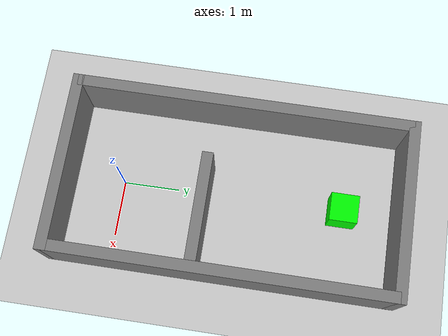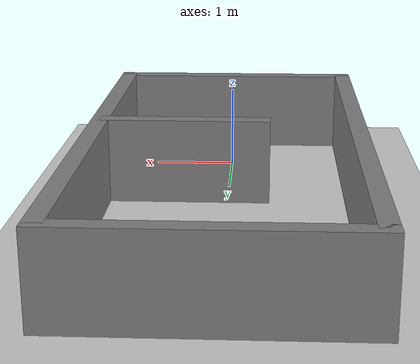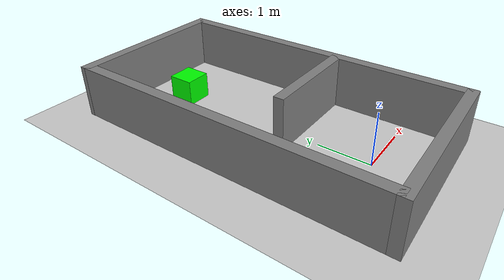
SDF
<?xml version="1.0" ?>
<sdf version="1.6">
    <world name="maze_simple">
    <light type="directional" name="sun">
      <cast_shadows>true</cast_shadows>
      <pose>0 0 10 0 0 0</pose>
      <diffuse>0.8 0.8 0.8 1</diffuse>
      <specular>0.2 0.2 0.2 1</specular>
      <attenuation><range>1000</range><constant>0.9</constant><linear>0.01</linear><quadratic>0.001</quadratic></attenuation>
      <direction>-0.5 0.1 -0.9</direction>
    </light>
    <model name="ground_plane">
      <static>true</static>
      <link name="link">
        <collision name="collision"><geometry><plane><normal>0 0 1</normal><size>100 100</size></plane></geometry></collision>
        <visual name="visual"><geometry><plane><normal>0 0 1</normal><size>100 100</size></plane></geometry>
          <material><ambient>0.8 0.8 0.8 1</ambient><diffuse>0.8 0.8 0.8 1</diffuse><specular>0.8 0.8 0.8 1</specular></material>
        </visual>
      </link>
    </model>
    <plugin filename="gz-sim-physics-system" name="gz::sim::systems::Physics"></plugin>
    <plugin filename="gz-sim-user-commands-system" name="gz::sim::systems::UserCommands"></plugin>
    <plugin filename="gz-sim-scene-broadcaster-system" name="gz::sim::systems::SceneBroadcaster"></plugin>
    <plugin filename="gz-sim-sensors-system" name="gz::sim::systems::Sensors"><render_engine>ogre2</render_engine></plugin>
    <!-- A global light source -->
    <!-- A ground plane -->
    <!-- Boundary Walls -->
    <model name="wall_left">
      <pose>-1.5 2.0 0.5 0 0 0</pose>
      <static>true</static>
      <link name="link">
        <collision name="collision">
          <geometry><box><size>0.2 6.0 1.0</size></box></geometry>
        </collision>
        <visual name="visual">
          <geometry><box><size>0.2 6.0 1.0</size></box></geometry>
          <material><ambient>0.5 0.5 0.5 1</ambient></material>
        </visual>
      </link>
    </model>
    <model name="wall_right">
      <pose>1.5 2.0 0.5 0 0 0</pose>
      <static>true</static>
      <link name="link">
        <collision name="collision">
          <geometry><box><size>0.2 6.0 1.0</size></box></geometry>
        </collision>
        <visual name="visual">
          <geometry><box><size>0.2 6.0 1.0</size></box></geometry>
          <material><ambient>0.5 0.5 0.5 1</ambient></material>
        </visual>
      </link>
    </model>
    <model name="wall_bottom">
      <pose>0 -1.0 0.5 0 0 0</pose>
      <static>true</static>
      <link name="link">
        <collision name="collision">
          <geometry><box><size>3.2 0.2 1.0</size></box></geometry>
        </collision>
        <visual name="visual">
          <geometry><box><size>3.2 0.2 1.0</size></box></geometry>
          <material><ambient>0.5 0.5 0.5 1</ambient></material>
        </visual>
      </link>
    </model>
    <model name="wall_top">
      <pose>0 5.0 0.5 0 0 0</pose>
      <static>true</static>
      <link name="link">
        <collision name="collision">
          <geometry><box><size>3.2 0.2 1.0</size></box></geometry>
        </collision>
        <visual name="visual">
          <geometry><box><size>3.2 0.2 1.0</size></box></geometry>
          <material><ambient>0.5 0.5 0.5 1</ambient></material>
        </visual>
      </link>
    </model>
    <!-- Inner Obstacle to create an L-bend -->
    <model name="obstacle_1">
      <pose>0.5 1.5 0.5 0 0 0</pose>
      <static>true</static>
      <link name="link">
        <collision name="collision">
          <geometry><box><size>2.0 0.2 1.0</size></box></geometry>
        </collision>
        <visual name="visual">
          <geometry><box><size>2.0 0.2 1.0</size></box></geometry>
          <material><ambient>0.5 0.5 0.5 1</ambient></material>
        </visual>
      </link>
    </model>
    <!-- Goal Marker (Green Box) -->
    <model name="goal_marker">
      <pose>0.0 4.0 0.25 0 0 0</pose>
      <static>true</static>
      <link name="link">
        <visual name="visual">
          <geometry><box><size>0.5 0.5 0.5</size></box></geometry>
          <material>
            <ambient>0 1 0 1</ambient>
            <diffuse>0 1 0 1</diffuse>
          </material>
        </visual>
        <!-- No collision to allow robot to reach exactly the coordinate -->
      </link>
    </model>
  </world>
</sdf>
